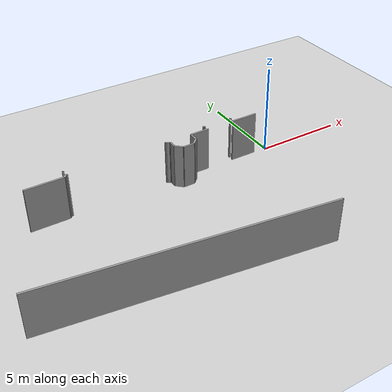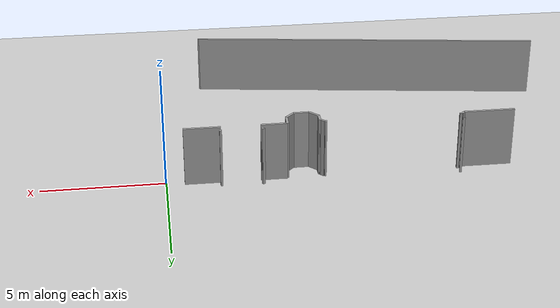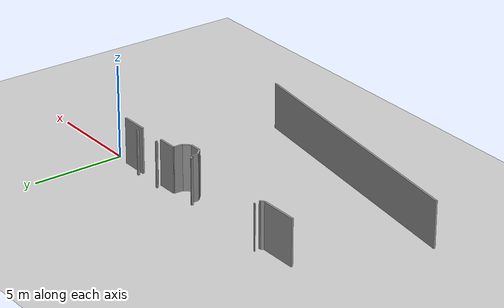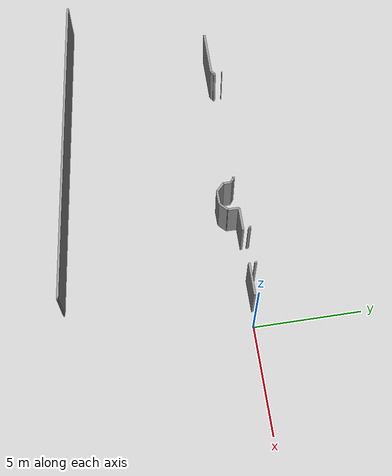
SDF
<sdf version="1.6">
 <world name="default">
  <model name="ground_plane">
   <static>1</static>
   <link name="link">
    <collision name="collision">
     <geometry><plane><normal>0 0 1</normal><size>100 100</size></plane></geometry>
     <surface><friction><ode><mu>100</mu><mu2>50</mu2></ode></friction></surface>
    </collision>
    <visual name="visual">
     <cast_shadows>0</cast_shadows>
     <geometry><plane><normal>0 0 1</normal><size>100 100</size></plane></geometry>
     <material>
      <script><uri>file://media/materials/scripts/gazebo.material</uri><name>Gazebo/Grey</name></script>
     </material>
    </visual>
   </link>
  </model>
  <model name="0510030941_A_40_1_105">
   <static>1</static>
   <link name="Wall_37">
    <collision name="Wall_37_Collision">
     <geometry><box><size>2.07017900474 0.1 2.5</size></box></geometry>
     <pose>1.03508950237 0 1.25 0 0 0</pose>
    </collision>
    <visual name="Wall_37_Visual">
     <pose>1.03508950237 0 1.25 0 0 0</pose>
     <geometry><box><size>2.07017900474 0.1 2.5</size></box></geometry>
     <material>
      <script><uri>file://media/materials/scripts/gazebo.material</uri><name>Gazebo/Grey</name></script>
      <ambient>1 1 1 1</ambient>
     </material>
    </visual>
    <pose>7.386581632 -13.6462846036 0 0 0 0.0</pose>
   </link>
   <link name="Wall_38">
    <collision name="Wall_38_Collision">
     <geometry><box><size>0.187940363819 0.1 2.5</size></box></geometry>
     <pose>0.0939701819095 0 1.25 0 0 0</pose>
    </collision>
    <visual name="Wall_38_Visual">
     <pose>0.0939701819095 0 1.25 0 0 0</pose>
     <geometry><box><size>0.187940363819 0.1 2.5</size></box></geometry>
     <material>
      <script><uri>file://media/materials/scripts/gazebo.material</uri><name>Gazebo/Grey</name></script>
      <ambient>1 1 1 1</ambient>
     </material>
    </visual>
    <pose>9.45676063674 -13.6462846036 0 0 0 0.794958101597</pose>
   </link>
   <link name="Wall_39">
    <collision name="Wall_39_Collision">
     <geometry><box><size>0.088676584554 0.1 2.5</size></box></geometry>
     <pose>0.044338292277 0 1.25 0 0 0</pose>
    </collision>
    <visual name="Wall_39_Visual">
     <pose>0.044338292277 0 1.25 0 0 0</pose>
     <geometry><box><size>0.088676584554 0.1 2.5</size></box></geometry>
     <material>
      <script><uri>file://media/materials/scripts/gazebo.material</uri><name>Gazebo/Grey</name></script>
      <ambient>1 1 1 1</ambient>
     </material>
    </visual>
    <pose>9.58837803158 -13.5121263324 0 0 0 0.0</pose>
   </link>
   <link name="Wall_40">
    <collision name="Wall_40_Collision">
     <geometry><box><size>0.0764803780824 0.1 2.5</size></box></geometry>
     <pose>0.0382401890412 0 1.25 0 0 0</pose>
    </collision>
    <visual name="Wall_40_Visual">
     <pose>0.0382401890412 0 1.25 0 0 0</pose>
     <geometry><box><size>0.0764803780824 0.1 2.5</size></box></geometry>
     <material>
      <script><uri>file://media/materials/scripts/gazebo.material</uri><name>Gazebo/Grey</name></script>
      <ambient>1 1 1 1</ambient>
     </material>
    </visual>
    <pose>15.0497376545 -13.5121263324 0 0 0 0.0</pose>
   </link>
   <link name="Wall_41">
    <collision name="Wall_41_Collision">
     <geometry><box><size>0.181038866264 0.1 2.5</size></box></geometry>
     <pose>0.0905194331321 0 1.25 0 0 0</pose>
    </collision>
    <visual name="Wall_41_Visual">
     <pose>0.0905194331321 0 1.25 0 0 0</pose>
     <geometry><box><size>0.181038866264 0.1 2.5</size></box></geometry>
     <material>
      <script><uri>file://media/materials/scripts/gazebo.material</uri><name>Gazebo/Grey</name></script>
      <ambient>1 1 1 1</ambient>
     </material>
    </visual>
    <pose>15.1262180326 -13.5121263324 0 0 0 -0.769022456129</pose>
   </link>
   <link name="Wall_42">
    <collision name="Wall_42_Collision">
     <geometry><box><size>0.0536124909481 0.1 2.5</size></box></geometry>
     <pose>0.0268062454741 0 1.25 0 0 0</pose>
    </collision>
    <visual name="Wall_42_Visual">
     <pose>0.0268062454741 0 1.25 0 0 0</pose>
     <geometry><box><size>0.0536124909481 0.1 2.5</size></box></geometry>
     <material>
      <script><uri>file://media/materials/scripts/gazebo.material</uri><name>Gazebo/Grey</name></script>
      <ambient>1 1 1 1</ambient>
     </material>
    </visual>
    <pose>15.2563109016 -13.6380267554 0 0 0 0.0</pose>
   </link>
   <link name="Wall_43">
    <collision name="Wall_43_Collision">
     <geometry><box><size>0.377828312985 0.1 2.5</size></box></geometry>
     <pose>0.188914156493 0 1.25 0 0 0</pose>
    </collision>
    <visual name="Wall_43_Visual">
     <pose>0.188914156493 0 1.25 0 0 0</pose>
     <geometry><box><size>0.377828312985 0.1 2.5</size></box></geometry>
     <material>
      <script><uri>file://media/materials/scripts/gazebo.material</uri><name>Gazebo/Grey</name></script>
      <ambient>1 1 1 1</ambient>
     </material>
    </visual>
    <pose>15.3099233926 -13.6380267554 0 0 0 -1.57079632679</pose>
   </link>
   <link name="Wall_44">
    <collision name="Wall_44_Collision">
     <geometry><box><size>0.483323706376 0.1 2.5</size></box></geometry>
     <pose>0.241661853188 0 1.25 0 0 0</pose>
    </collision>
    <visual name="Wall_44_Visual">
     <pose>0.241661853188 0 1.25 0 0 0</pose>
     <geometry><box><size>0.483323706376 0.1 2.5</size></box></geometry>
     <material>
      <script><uri>file://media/materials/scripts/gazebo.material</uri><name>Gazebo/Grey</name></script>
      <ambient>1 1 1 1</ambient>
     </material>
    </visual>
    <pose>15.3099233926 -14.0158550684 0 0 0 -0.776476467032</pose>
   </link>
   <link name="Wall_45">
    <collision name="Wall_45_Collision">
     <geometry><box><size>0.629842362305 0.1 2.5</size></box></geometry>
     <pose>0.314921181152 0 1.25 0 0 0</pose>
    </collision>
    <visual name="Wall_45_Visual">
     <pose>0.314921181152 0 1.25 0 0 0</pose>
     <geometry><box><size>0.629842362305 0.1 2.5</size></box></geometry>
     <material>
      <script><uri>file://media/materials/scripts/gazebo.material</uri><name>Gazebo/Grey</name></script>
      <ambient>1 1 1 1</ambient>
     </material>
    </visual>
    <pose>15.654720313 -14.3545538856 0 0 0 0.0165407548028</pose>
   </link>
   <link name="Wall_46">
    <collision name="Wall_46_Collision">
     <geometry><box><size>0.458430164429 0.1 2.5</size></box></geometry>
     <pose>0.229215082215 0 1.25 0 0 0</pose>
    </collision>
    <visual name="Wall_46_Visual">
     <pose>0.229215082215 0 1.25 0 0 0</pose>
     <geometry><box><size>0.458430164429 0.1 2.5</size></box></geometry>
     <material>
      <script><uri>file://media/materials/scripts/gazebo.material</uri><name>Gazebo/Grey</name></script>
      <ambient>1 1 1 1</ambient>
     </material>
    </visual>
    <pose>16.284476516 -14.3441362926 0 0 0 0.778931469296</pose>
   </link>
   <link name="Wall_47">
    <collision name="Wall_47_Collision">
     <geometry><box><size>0.51117464106 0.1 2.5</size></box></geometry>
     <pose>0.25558732053 0 1.25 0 0 0</pose>
    </collision>
    <visual name="Wall_47_Visual">
     <pose>0.25558732053 0 1.25 0 0 0</pose>
     <geometry><box><size>0.51117464106 0.1 2.5</size></box></geometry>
     <material>
      <script><uri>file://media/materials/scripts/gazebo.material</uri><name>Gazebo/Grey</name></script>
      <ambient>1 1 1 1</ambient>
     </material>
    </visual>
    <pose>16.6107250391 -14.0220802155 0 0 0 1.55339813218</pose>
   </link>
   <link name="Wall_48">
    <collision name="Wall_48_Collision">
     <geometry><box><size>1.07415674591 0.1 2.5</size></box></geometry>
     <pose>0.537078372955 0 1.25 0 0 0</pose>
    </collision>
    <visual name="Wall_48_Visual">
     <pose>0.537078372955 0 1.25 0 0 0</pose>
     <geometry><box><size>1.07415674591 0.1 2.5</size></box></geometry>
     <material>
      <script><uri>file://media/materials/scripts/gazebo.material</uri><name>Gazebo/Grey</name></script>
      <ambient>1 1 1 1</ambient>
     </material>
    </visual>
    <pose>16.6196181063 -13.510982938 0 0 0 0.00153755053291</pose>
   </link>
   <link name="Wall_49">
    <collision name="Wall_49_Collision">
     <geometry><box><size>1.49594095003 0.1 2.5</size></box></geometry>
     <pose>0.747970475017 0 1.25 0 0 0</pose>
    </collision>
    <visual name="Wall_49_Visual">
     <pose>0.747970475017 0 1.25 0 0 0</pose>
     <geometry><box><size>1.49594095003 0.1 2.5</size></box></geometry>
     <material>
      <script><uri>file://media/materials/scripts/gazebo.material</uri><name>Gazebo/Grey</name></script>
      <ambient>1 1 1 1</ambient>
     </material>
    </visual>
    <pose>19.2642892534 -13.5093313684 0 0 0 0.0</pose>
   </link>
   <link name="Wall_70">
    <collision name="Wall_70_Collision">
     <geometry><box><size>0.0305803731434 0.1 2.5</size></box></geometry>
     <pose>0.0152901865717 0 1.25 0 0 0</pose>
    </collision>
    <visual name="Wall_70_Visual">
     <pose>0.0152901865717 0 1.25 0 0 0</pose>
     <geometry><box><size>0.0305803731434 0.1 2.5</size></box></geometry>
     <material>
      <script><uri>file://media/materials/scripts/gazebo.material</uri><name>Gazebo/Grey</name></script>
      <ambient>1 1 1 1</ambient>
     </material>
    </visual>
    <pose>19.6480886258 -21.9963665468 0 0 0 -2.06417494957</pose>
   </link>
   <link name="Wall_71">
    <collision name="Wall_71_Collision">
     <geometry><box><size>14.9120053561 0.1 2.5</size></box></geometry>
     <pose>7.45600267804 0 1.25 0 0 0</pose>
    </collision>
    <visual name="Wall_71_Visual">
     <pose>7.45600267804 0 1.25 0 0 0</pose>
     <geometry><box><size>14.9120053561 0.1 2.5</size></box></geometry>
     <material>
      <script><uri>file://media/materials/scripts/gazebo.material</uri><name>Gazebo/Grey</name></script>
      <ambient>1 1 1 1</ambient>
     </material>
    </visual>
    <pose>19.6336056306 -22.0232998361 0 0 0 3.00742477979</pose>
   </link>
   <link name="Wall_85">
    <collision name="Wall_85_Collision">
     <geometry><box><size>0.0329927681698 0.1 2.5</size></box></geometry>
     <pose>0.0164963840849 0 1.25 0 0 0</pose>
    </collision>
    <visual name="Wall_85_Visual">
     <pose>0.0164963840849 0 1.25 0 0 0</pose>
     <geometry><box><size>0.0329927681698 0.1 2.5</size></box></geometry>
     <material>
      <script><uri>file://media/materials/scripts/gazebo.material</uri><name>Gazebo/Grey</name></script>
      <ambient>1 1 1 1</ambient>
     </material>
    </visual>
    <pose>9.5855830676 -13.1668212366 0 0 0 1.49756842541</pose>
   </link>
   <link name="Wall_91">
    <collision name="Wall_91_Collision">
     <geometry><box><size>0.0928690305286 0.1 2.5</size></box></geometry>
     <pose>0.0464345152643 0 1.25 0 0 0</pose>
    </collision>
    <visual name="Wall_91_Visual">
     <pose>0.0464345152643 0 1.25 0 0 0</pose>
     <geometry><box><size>0.0928690305286 0.1 2.5</size></box></geometry>
     <material>
      <script><uri>file://media/materials/scripts/gazebo.material</uri><name>Gazebo/Grey</name></script>
      <ambient>1 1 1 1</ambient>
     </material>
    </visual>
    <pose>19.3410237191 -13.2210689467 0 0 0 3.14159265359</pose>
   </link>
   <link name="Wall_92">
    <collision name="Wall_92_Collision">
     <geometry><box><size>0.080672824057 0.1 2.5</size></box></geometry>
     <pose>0.0403364120285 0 1.25 0 0 0</pose>
    </collision>
    <visual name="Wall_92_Visual">
     <pose>0.0403364120285 0 1.25 0 0 0</pose>
     <geometry><box><size>0.080672824057 0.1 2.5</size></box></geometry>
     <material>
      <script><uri>file://media/materials/scripts/gazebo.material</uri><name>Gazebo/Grey</name></script>
      <ambient>1 1 1 1</ambient>
     </material>
    </visual>
    <pose>17.6851346029 -13.2210689467 0 0 0 3.14159265359</pose>
   </link>
   <link name="Wall_93">
    <collision name="Wall_93_Collision">
     <geometry><box><size>0.0834677880401 0.1 2.5</size></box></geometry>
     <pose>0.04173389402 0 1.25 0 0 0</pose>
    </collision>
    <visual name="Wall_93_Visual">
     <pose>0.04173389402 0 1.25 0 0 0</pose>
     <geometry><box><size>0.0834677880401 0.1 2.5</size></box></geometry>
     <material>
      <script><uri>file://media/materials/scripts/gazebo.material</uri><name>Gazebo/Grey</name></script>
      <ambient>1 1 1 1</ambient>
     </material>
    </visual>
    <pose>17.6044617789 -13.2210689467 0 0 0 1.57079632679</pose>
   </link>
   <pose>-21.5 13.5950713351 0 0 0 0</pose>
  </model>
 </world>
</sdf>
